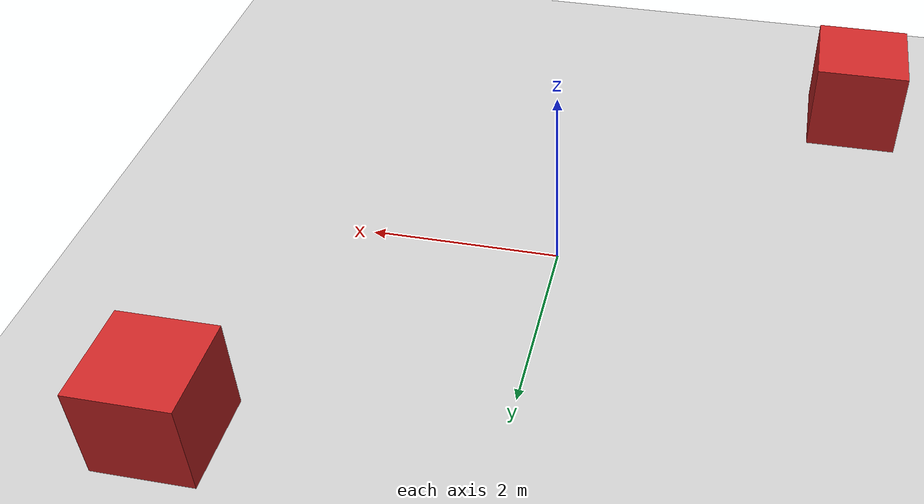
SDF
<?xml version="1.0" ?>
<sdf version="1.6">
  <world name="simple_warehouse">

    <!-- Physics -->
    <physics name="default_physics" default="0" type="ode">
      <gravity>0 0 -9.8066</gravity>
      <ode>
        <solver>
          <type>quick</type>
          <iters>150</iters>
          <sor>1.3</sor>
        </solver>
        <constraints>
          <cfm>0.00001</cfm>
          <erp>0.2</erp>
          <contact_max_correcting_vel>1000</contact_max_correcting_vel>
          <contact_surface_layer>0.01</contact_surface_layer>
        </constraints>
      </ode>
      <max_step_size>0.004</max_step_size>
      <real_time_factor>1</real_time_factor>
      <real_time_update_rate>250</real_time_update_rate>
    </physics>

    <!-- Scene -->
    <scene>
      <ambient>0.4 0.4 0.4 1</ambient>
      <background>0.7 0.7 0.7 1</background>
      <shadows>true</shadows>
    </scene>

    <!-- Sun -->
    <include>
      <uri>model://sun</uri>
    </include>

    <!-- Ground plane -->
    <model name="ground_plane">
      <static>true</static>
      <link name="link">
        <collision name="collision">
          <geometry>
            <plane>
              <normal>0 0 1</normal>
              <size>50 50</size>
            </plane>
          </geometry>
        </collision>
        <visual name="visual">
          <geometry>
            <plane>
              <normal>0 0 1</normal>
              <size>50 50</size>
            </plane>
          </geometry>
          <material>
            <script>
              <uri>file://media/materials/scripts/gazebo.material</uri>
              <name>Gazebo/Grey</name>
            </script>
          </material>
        </visual>
      </link>
    </model>

    <!-- Simple obstacles -->
    <model name="obstacle_1">
      <static>true</static>
      <pose>3 3 0.5 0 0 0</pose>
      <link name="link">
        <collision name="collision">
          <geometry>
            <box>
              <size>1 1 1</size>
            </box>
          </geometry>
        </collision>
        <visual name="visual">
          <geometry>
            <box>
              <size>1 1 1</size>
            </box>
          </geometry>
          <material>
            <script>
              <uri>file://media/materials/scripts/gazebo.material</uri>
              <name>Gazebo/Red</name>
            </script>
          </material>
        </visual>
      </link>
    </model>

    <model name="obstacle_2">
      <static>true</static>
      <pose>-3 -3 0.5 0 0 0</pose>
      <link name="link">
        <collision name="collision">
          <geometry>
            <box>
              <size>1 1 1</size>
            </box>
          </geometry>
        </collision>
        <visual name="visual">
          <geometry>
            <box>
              <size>1 1 1</size>
            </box>
          </geometry>
          <material>
            <script>
              <uri>file://media/materials/scripts/gazebo.material</uri>
              <name>Gazebo/Red</name>
            </script>
          </material>
        </visual>
      </link>
    </model>

  </world>
</sdf>
